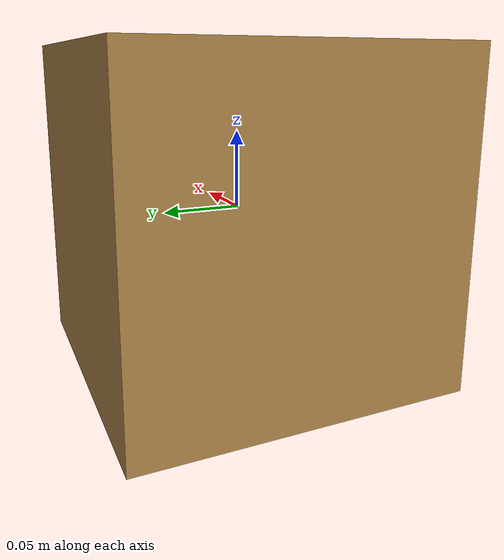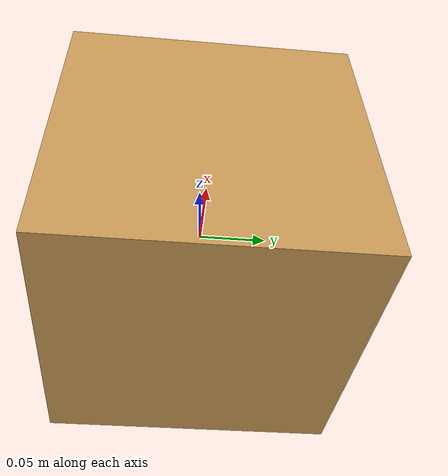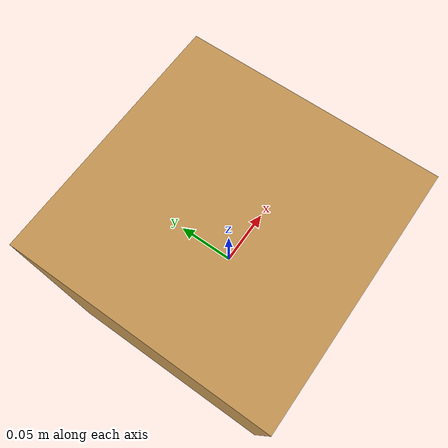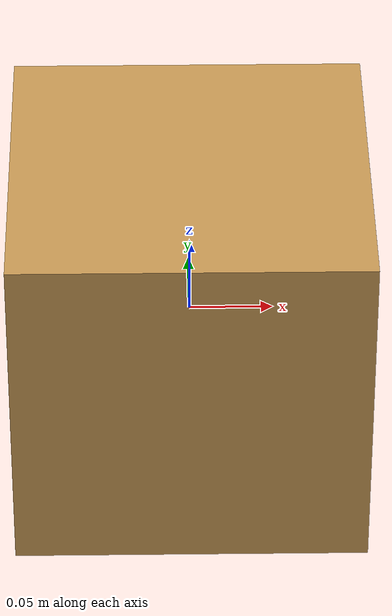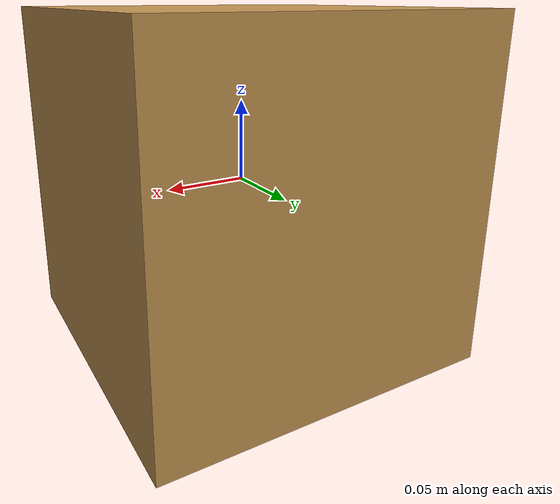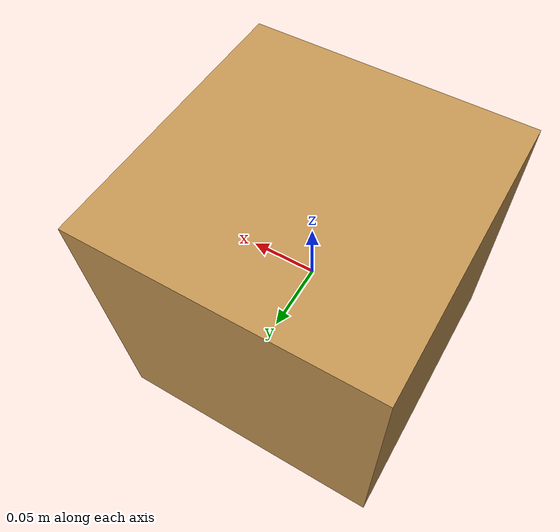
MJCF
<?xml version="1.0" encoding="utf-8"?>
<mujoco model="arena_pp_box_cardboard_box">
  <compiler angle="radian" autolimits="true"/>
  <asset>
    <material name="cardboard" rgba="0.76 0.58 0.32 1" specular="0.04" shininess="0.08"/>
  </asset>
  <worldbody>
    <body name="object">
      <geom name="box_collision" type="box" size="0.105 0.105 0.105"
            mass="0.05" material="cardboard"
            group="1" contype="1" conaffinity="1" condim="4"
            friction="1.0 0.05 0.01" solref="0.004 1.0" solimp="0.95 0.99 0.001"/>
    </body>
  </worldbody>
</mujoco>
